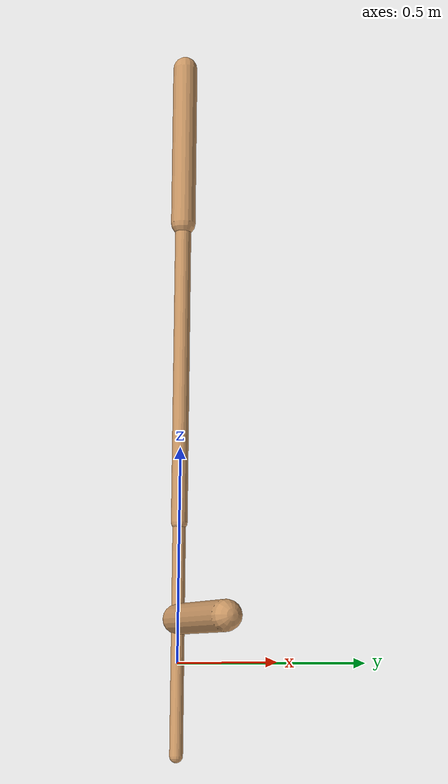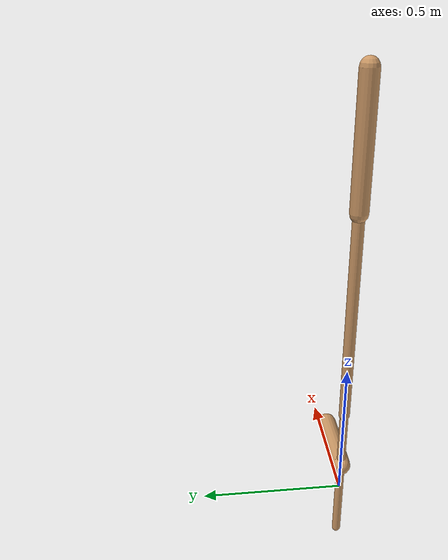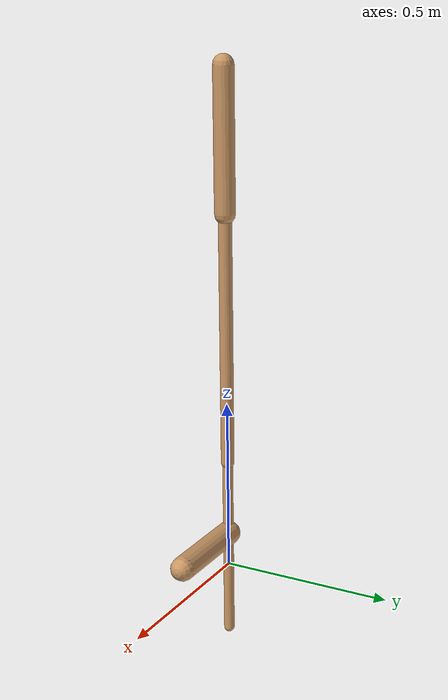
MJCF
<mujoco model="walker2d">
  <compiler angle="degree" coordinate="global" inertiafromgeom="true" />
  <default>
    <joint armature="0.01" damping=".1" limited="true" />
    <geom conaffinity="0" condim="3" contype="1" density="1000" friction="0.8 .1 .1" rgba="0.8 0.6 .4 1" />
  </default>
  <option integrator="RK4" timestep="0.002" />
  <worldbody>

    <body name="torso" pos="0 0 0.5840184038549815">
      <joint armature="0" axis="1 0 0" damping="0" limited="false" name="ignorex" pos="0 0 0" stiffness="0" type="slide" />
      <joint armature="0" axis="0 0 1" damping="0" limited="false" name="ignorez" pos="0 0 0" ref="1.25" stiffness="0" type="slide" />
      <joint armature="0" axis="0 1 0" damping="0" limited="false" name="ignorey" pos="0 0 0" stiffness="0" type="hinge" />
      <geom fromto="0 0 1.45 0 0 1.05" name="torso_geom" size="0.029454125631959545" type="capsule" />
      <body name="thigh">
        <joint axis="0 -1 0" name="thigh_joint" pos="0 0 1.05" range="-150 0" type="hinge" />
        <geom fromto="0.0 0.0 1.05 0.0 0.0 0.32335970343711395" name="thigh_geom" size="0.019252893108828002" type="capsule" />
        <body name="leg" pos="0.0 0.0 -0.276640296562886">
          <joint axis="0 -1 0" name="leg_joint" pos="0 0 0.6" range="-150 0" type="hinge" />
          <geom fromto="0.0 0.0 0.6 0.0 0.0 -0.20737810729209552" name="leg_geom" size="0.015402314487062401" type="capsule" />
          <body name="foot" pos="0.0 0.0 -0.3073781072920955">
            <joint axis="0 -1 0" name="foot_joint" pos="0 0 0.1" range="-45 45" type="hinge" />
            <geom fromto="-0.0 0.0 0.1 0.26100359130423656 0.0 0.1" name="foot_geom" size="0.035274706778721396" type="capsule" />
          </body>
        </body>
      </body>

      <body name="thigh_left">
        <joint axis="0 -1 0" name="thigh_left_joint" pos="0 0 1.05" range="-150 0" type="hinge" />
        <geom fromto="0.0 0.0 1.05 0.0 0.0 0.32335970343711395" name="thigh_left_geom" rgba=".7 .3 .6 1" size="0.019252893108828002" type="capsule" />
        <body name="leg_left" pos="0.0 0.0 -0.276640296562886">
          <joint axis="0 -1 0" name="leg_left_joint" pos="0 0 0.6" range="-150 0" type="hinge" />
          <geom fromto="0.0 0.0 0.6 0.0 0.0 -0.20737810729209552" name="leg_left_geom" rgba=".7 .3 .6 1" size="0.015402314487062401" type="capsule" />
          <body name="foot_left" pos="0.0 0.0 -0.3073781072920955">
            <joint axis="0 -1 0" name="foot_left_joint" pos="0 0 0.1" range="-45 45" type="hinge" />
            <geom fromto="-0.0 0.0 0.1 0.26100359130423656 0.0 0.1" name="foot_left_geom" rgba=".7 .3 .6 1" size="0.035274706778721396" type="capsule" />
          </body>
        </body>
      </body>
    </body>
  </worldbody>
  <actuator>

    <motor ctrllimited="true" ctrlrange="-1.0 1.0" gear="100" joint="thigh_joint" />
    <motor ctrllimited="true" ctrlrange="-1.0 1.0" gear="100" joint="leg_joint" />
    <motor ctrllimited="true" ctrlrange="-1.0 1.0" gear="100" joint="foot_joint" />
    <motor ctrllimited="true" ctrlrange="-1.0 1.0" gear="100" joint="thigh_left_joint" />
    <motor ctrllimited="true" ctrlrange="-1.0 1.0" gear="100" joint="leg_left_joint" />
    <motor ctrllimited="true" ctrlrange="-1.0 1.0" gear="100" joint="foot_left_joint" />

  </actuator>
</mujoco>
